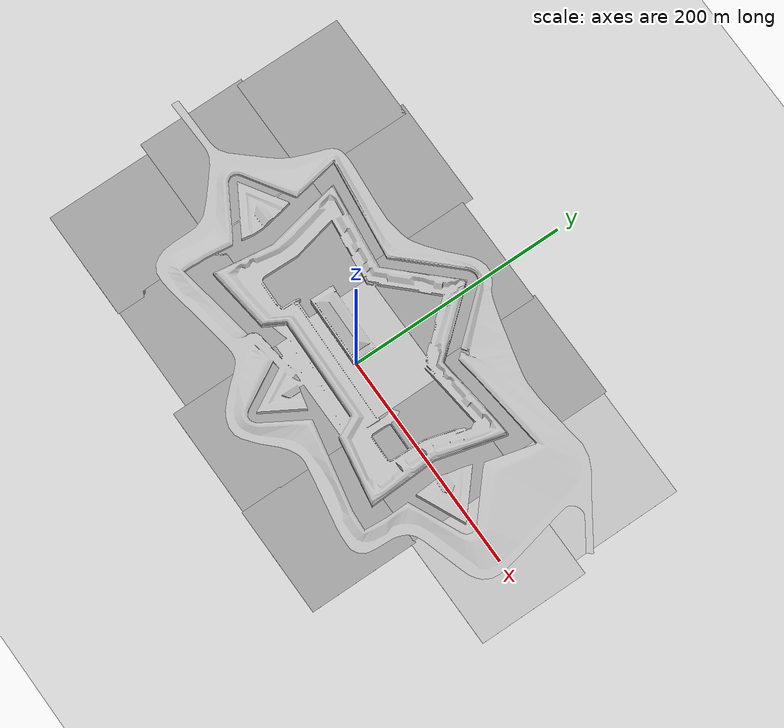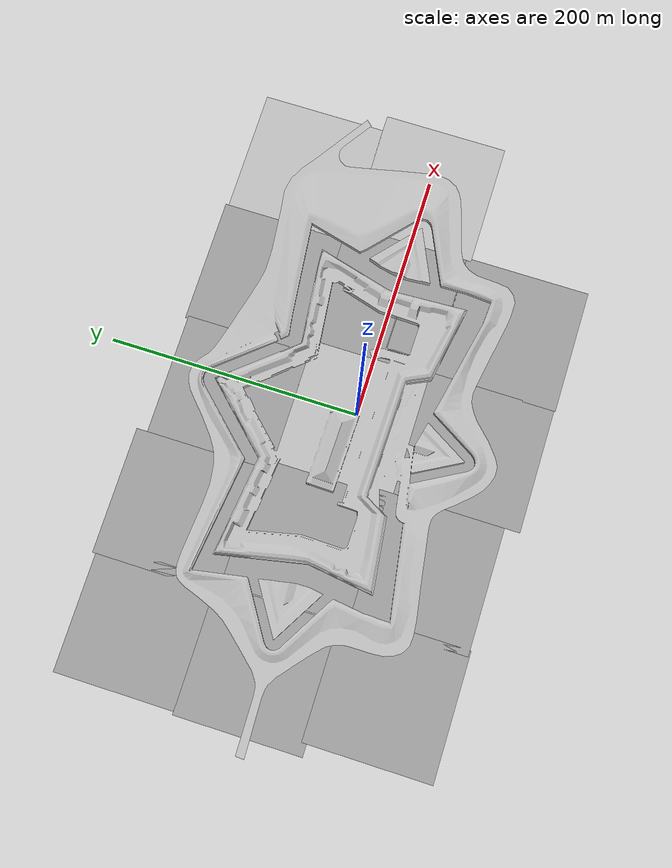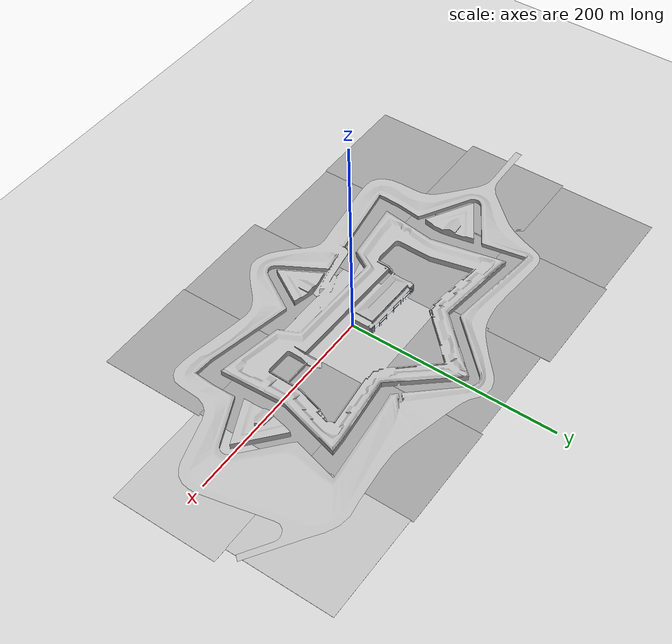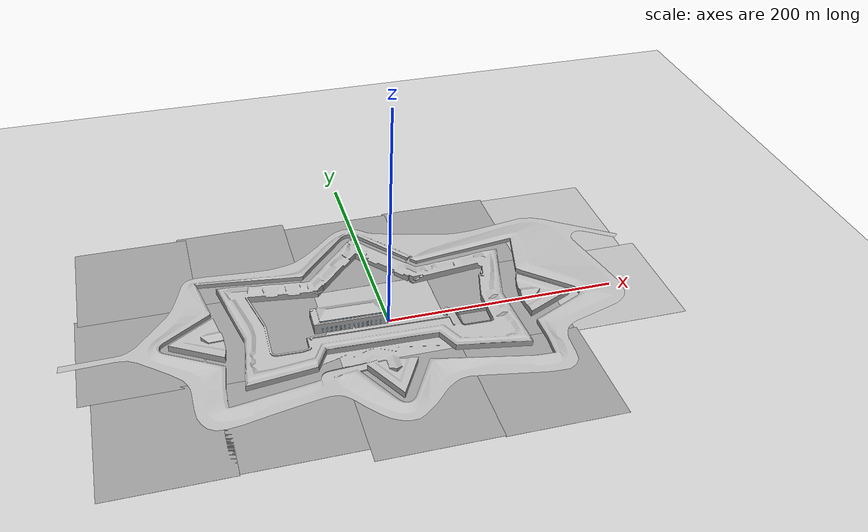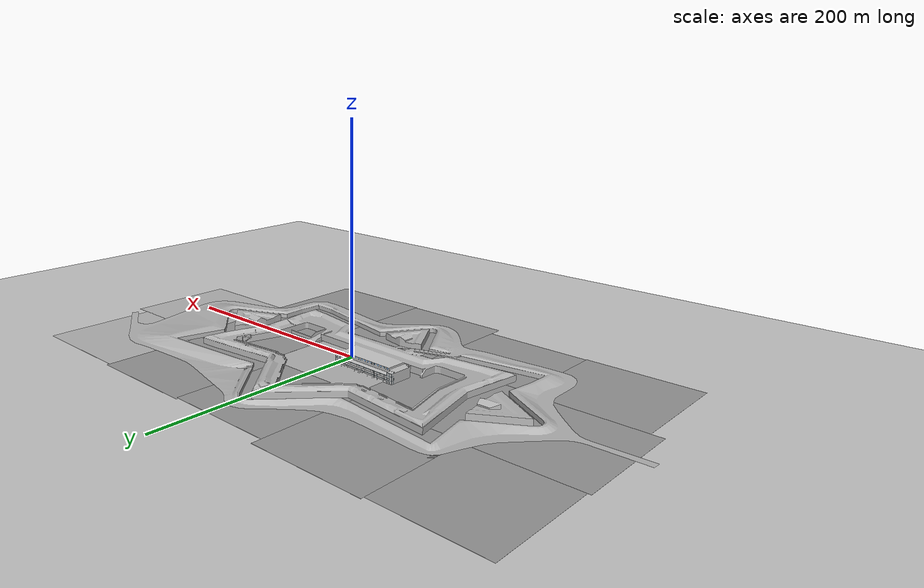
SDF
<sdf version="1.4">
 <world name="default">
  <light name="sundir" type="directional">
   <pose>0 0 10 0 -0 0</pose>
   <diffuse>1 0.95 0.8 1</diffuse>
   <specular>0.7 0.7 0.7 1</specular>
   <attenuation>
    <range>1000</range>
    <constant>0.9</constant>
    <linear>0.01</linear>
    <quadratic>0.001</quadratic>
   </attenuation>
   <direction>-0.3 0.4 -1</direction>
  </light>
  <light name="skydir1" type="directional">
   <cast_shadows>0</cast_shadows>
   <pose>10 0 10 0 -0 0</pose>
   <diffuse>0.5 0.5 0.52 1</diffuse>
   <specular>0.1 0.1 0.1 1</specular>
   <attenuation>
    <range>1000</range>
    <constant>0.9</constant>
    <linear>0.01</linear>
    <quadratic>0.001</quadratic>
   </attenuation>
   <direction>0.6 -0.4 -0.9</direction>
  </light>
  <light name="skydir2" type="directional">
   <cast_shadows>0</cast_shadows>
   <pose>20 0 10 0 -0 0</pose>
   <diffuse>0.5 0.5 0.52 1</diffuse>
   <specular>0.1 0.1 0.1 1</specular>
   <attenuation>
    <range>1000</range>
    <constant>0.9</constant>
    <linear>0.01</linear>
    <quadratic>0.001</quadratic>
   </attenuation>
   <direction>0 0.6 -0.9</direction>
  </light>
  <light name="refdir" type="directional">
   <cast_shadows>0</cast_shadows>
   <pose>30 0 10 0 -0 0</pose>
   <diffuse>0.52 0.5 0.5 1</diffuse>
   <specular>0.1 0.1 0.1 1</specular>
   <attenuation>
    <range>1000</range>
    <constant>0.9</constant>
    <linear>0.01</linear>
    <quadratic>0.001</quadratic>
   </attenuation>
   <direction>-0.6 -0.5 0.8</direction>
  </light>
  <model name="citadel">
   <pose>-291.751 -197.985 0 1.5708 -0 0</pose>
   <static>1</static>
   <link name="body">
    <collision name="collision">
     <geometry>
      <mesh>
       <uri>file:///home/rohan/work_workspace/src/Simulator/spiri_description/world/GazeboCitadel/Gazebo/citadel_tex1.dae</uri>
      </mesh>
     </geometry>
    </collision>
    <visual name="visual">
     <geometry>
      <mesh>
       <uri>file:///home/rohan/work_workspace/src/Simulator/spiri_description/world/GazeboCitadel/Gazebo/citadel_tex1.dae</uri>
      </mesh>
     </geometry>
    </visual>
    <velocity_decay><linear>0</linear><angular>0</angular></velocity_decay>
    <gravity>0</gravity>
   </link>
  </model>
  <scene><ambient>0.45 0.5 0.45 1</ambient><background>0 0.7 1 1</background><shadows>1</shadows></scene>
  <physics type="ode">
   <max_step_size>0.001</max_step_size>
   <real_time_factor>1</real_time_factor>
   <real_time_update_rate>1000</real_time_update_rate>
   <gravity>0 0 -9.8</gravity>
  </physics>
  <model name="ground_plane">
   <static>1</static>
   <link name="link">
    <collision name="collision">
     <geometry><plane><normal>0 0 1</normal><size>100 100</size></plane></geometry>
     <surface><friction><ode><mu>100</mu><mu2>50</mu2></ode></friction></surface>
    </collision>
    <visual name="visual">
     <cast_shadows>0</cast_shadows>
     <geometry><plane><normal>0 0 1</normal><size>100 100</size></plane></geometry>
     <material>
      <script><uri>file://media/materials/scripts/gazebo.material</uri><name>Gazebo/Grey</name></script>
     </material>
    </visual>
    <velocity_decay><linear>0</linear><angular>0</angular></velocity_decay>
   </link>
   <pose>-3 5 0 0 -0 0</pose>
  </model>
  <model name="ground_plane_0">
   <static>1</static>
   <link name="link">
    <collision name="collision">
     <geometry><plane><normal>0 0 1</normal><size>100 100</size></plane></geometry>
     <surface><friction><ode><mu>100</mu><mu2>50</mu2></ode></friction></surface>
    </collision>
    <visual name="visual">
     <cast_shadows>0</cast_shadows>
     <geometry><plane><normal>0 0 1</normal><size>100 100</size></plane></geometry>
     <material>
      <script>
       <uri>file:///home/rohan/work_workspace/src/Simulator/spiri_description/Media/materials/scripts/citadel_floor.material</uri>
       <name>Gazebo/Grey</name>
      </script>
     </material>
    </visual>
    <velocity_decay><linear>0</linear><angular>0</angular></velocity_decay>
   </link>
   <pose>97 3 0 0 -0 0</pose>
  </model>
  <model name="ground_plane_1">
   <static>1</static>
   <link name="link">
    <collision name="collision">
     <geometry><plane><normal>0 0 1</normal><size>100 100</size></plane></geometry>
     <surface><friction><ode><mu>100</mu><mu2>50</mu2></ode></friction></surface>
    </collision>
    <visual name="visual">
     <cast_shadows>0</cast_shadows>
     <geometry><plane><normal>0 0 1</normal><size>100 100</size></plane></geometry>
     <material>
      <script><uri>file://media/materials/scripts/gazebo.material</uri><name>Gazebo/Grey</name></script>
     </material>
    </visual>
    <velocity_decay><linear>0</linear><angular>0</angular></velocity_decay>
   </link>
   <pose>0 -95 0 0 -0 0</pose>
  </model>
  <model name="ground_plane_2">
   <static>1</static>
   <link name="link">
    <collision name="collision">
     <geometry><plane><normal>0 0 1</normal><size>100 100</size></plane></geometry>
     <surface><friction><ode><mu>100</mu><mu2>50</mu2></ode></friction></surface>
    </collision>
    <visual name="visual">
     <cast_shadows>0</cast_shadows>
     <geometry><plane><normal>0 0 1</normal><size>100 100</size></plane></geometry>
     <material>
      <script><uri>file://media/materials/scripts/gazebo.material</uri><name>Gazebo/Grey</name></script>
     </material>
    </visual>
    <velocity_decay><linear>0</linear><angular>0</angular></velocity_decay>
   </link>
   <pose>99 -96 0 0 -0 0</pose>
  </model>
  <model name="ground_plane_3">
   <static>1</static>
   <link name="link">
    <collision name="collision">
     <geometry><plane><normal>0 0 1</normal><size>100 100</size></plane></geometry>
     <surface><friction><ode><mu>100</mu><mu2>50</mu2></ode></friction></surface>
    </collision>
    <visual name="visual">
     <cast_shadows>0</cast_shadows>
     <geometry><plane><normal>0 0 1</normal><size>100 100</size></plane></geometry>
     <material>
      <script><uri>file://media/materials/scripts/gazebo.material</uri><name>Gazebo/Grey</name></script>
     </material>
    </visual>
    <velocity_decay><linear>0</linear><angular>0</angular></velocity_decay>
   </link>
   <pose>-104 9 0 0 -0 0</pose>
  </model>
  <model name="ground_plane_4">
   <static>1</static>
   <link name="link">
    <collision name="collision">
     <geometry><plane><normal>0 0 1</normal><size>100 100</size></plane></geometry>
     <surface><friction><ode><mu>100</mu><mu2>50</mu2></ode></friction></surface>
    </collision>
    <visual name="visual">
     <cast_shadows>0</cast_shadows>
     <geometry><plane><normal>0 0 1</normal><size>100 100</size></plane></geometry>
     <material>
      <script><uri>file://media/materials/scripts/gazebo.material</uri><name>Gazebo/Grey</name></script>
     </material>
    </visual>
    <velocity_decay><linear>0</linear><angular>0</angular></velocity_decay>
   </link>
   <pose>-100 -83 0 0 -0 0</pose>
  </model>
  <model name="ground_plane_5">
   <static>1</static>
   <link name="link">
    <collision name="collision">
     <geometry><plane><normal>0 0 1</normal><size>100 100</size></plane></geometry>
     <surface><friction><ode><mu>100</mu><mu2>50</mu2></ode></friction></surface>
    </collision>
    <visual name="visual">
     <cast_shadows>0</cast_shadows>
     <geometry><plane><normal>0 0 1</normal><size>100 100</size></plane></geometry>
     <material>
      <script><uri>file://media/materials/scripts/gazebo.material</uri><name>Gazebo/Grey</name></script>
     </material>
    </visual>
    <velocity_decay><linear>0</linear><angular>0</angular></velocity_decay>
   </link>
   <pose>-205 12 0 0 -0 0</pose>
  </model>
  <model name="ground_plane_6">
   <static>1</static>
   <link name="link">
    <collision name="collision">
     <geometry><plane><normal>0 0 1</normal><size>100 100</size></plane></geometry>
     <surface><friction><ode><mu>100</mu><mu2>50</mu2></ode></friction></surface>
    </collision>
    <visual name="visual">
     <cast_shadows>0</cast_shadows>
     <geometry><plane><normal>0 0 1</normal><size>100 100</size></plane></geometry>
     <material>
      <script><uri>file://media/materials/scripts/gazebo.material</uri><name>Gazebo/Grey</name></script>
     </material>
    </visual>
    <velocity_decay><linear>0</linear><angular>0</angular></velocity_decay>
   </link>
   <pose>-195 -84 0 0 -0 0</pose>
  </model>
  <model name="ground_plane_7">
   <static>1</static>
   <link name="link">
    <collision name="collision">
     <geometry><plane><normal>0 0 1</normal><size>100 100</size></plane></geometry>
     <surface><friction><ode><mu>100</mu><mu2>50</mu2></ode></friction></surface>
    </collision>
    <visual name="visual">
     <cast_shadows>0</cast_shadows>
     <geometry><plane><normal>0 0 1</normal><size>100 100</size></plane></geometry>
     <material>
      <script><uri>file://media/materials/scripts/gazebo.material</uri><name>Gazebo/Grey</name></script>
     </material>
    </visual>
    <velocity_decay><linear>0</linear><angular>0</angular></velocity_decay>
   </link>
   <pose>-111 108.575 0 0 -0 0</pose>
  </model>
  <model name="ground_plane_8">
   <static>1</static>
   <link name="link">
    <collision name="collision">
     <geometry><plane><normal>0 0 1</normal><size>100 100</size></plane></geometry>
     <surface><friction><ode><mu>100</mu><mu2>50</mu2></ode></friction></surface>
    </collision>
    <visual name="visual">
     <cast_shadows>0</cast_shadows>
     <geometry><plane><normal>0 0 1</normal><size>100 100</size></plane></geometry>
     <material>
      <script><uri>file://media/materials/scripts/gazebo.material</uri><name>Gazebo/Grey</name></script>
     </material>
    </visual>
    <velocity_decay><linear>0</linear><angular>0</angular></velocity_decay>
   </link>
   <pose>-13.4519 100 0 0 -0 0</pose>
  </model>
  <model name="ground_plane_9">
   <static>1</static>
   <link name="link">
    <collision name="collision">
     <geometry><plane><normal>0 0 1</normal><size>100 100</size></plane></geometry>
     <surface><friction><ode><mu>100</mu><mu2>50</mu2></ode></friction></surface>
    </collision>
    <visual name="visual">
     <cast_shadows>0</cast_shadows>
     <geometry><plane><normal>0 0 1</normal><size>100 100</size></plane></geometry>
     <material>
      <script><uri>file://media/materials/scripts/gazebo.material</uri><name>Gazebo/Grey</name></script>
     </material>
    </visual>
    <velocity_decay><linear>0</linear><angular>0</angular></velocity_decay>
   </link>
   <pose>84.499 102 0 0 -0 0</pose>
  </model>
  <model name="ground_plane_10">
   <static>1</static>
   <link name="link">
    <collision name="collision">
     <geometry><plane><normal>0 0 1</normal><size>100 100</size></plane></geometry>
     <surface><friction><ode><mu>100</mu><mu2>50</mu2></ode></friction></surface>
    </collision>
    <visual name="visual">
     <cast_shadows>0</cast_shadows>
     <geometry><plane><normal>0 0 1</normal><size>100 100</size></plane></geometry>
     <material>
      <script><uri>file://media/materials/scripts/gazebo.material</uri><name>Gazebo/Grey</name></script>
     </material>
    </visual>
    <velocity_decay><linear>0</linear><angular>0</angular></velocity_decay>
   </link>
   <pose>-202.505 106 0 0 -0 0</pose>
  </model>
  <model name="ground_plane_11">
   <static>1</static>
   <link name="link">
    <collision name="collision">
     <geometry><plane><normal>0 0 1</normal><size>100 100</size></plane></geometry>
     <surface><friction><ode><mu>100</mu><mu2>50</mu2></ode></friction></surface>
    </collision>
    <visual name="visual">
     <cast_shadows>0</cast_shadows>
     <geometry><plane><normal>0 0 1</normal><size>100 100</size></plane></geometry>
     <material>
      <script>
       <uri>file:///home/rohan/work_workspace/src/Simulator/spiri_description/Media/materials/scripts/citadel_floor.material</uri>
       <name>spiri_description/citadel_floor</name>
      </script>
     </material>
    </visual>
    <velocity_decay><linear>0</linear><angular>0</angular></velocity_decay>
   </link>
   <pose>184 99.546 0 0 -0 0</pose>
  </model>
  <model name="ground_plane_12">
   <static>1</static>
   <link name="link">
    <collision name="collision">
     <geometry><plane><normal>0 0 1</normal><size>100 100</size></plane></geometry>
     <surface><friction><ode><mu>100</mu><mu2>50</mu2></ode></friction></surface>
    </collision>
    <visual name="visual">
     <cast_shadows>0</cast_shadows>
     <geometry><plane><normal>0 0 1</normal><size>100 100</size></plane></geometry>
     <material>
      <script>
       <uri>file:///home/rohan/work_workspace/src/Simulator/spiri_description/Media/materials/scripts/citadel_floor.material</uri>
       <name>spiri_description/citadel_floor</name>
      </script>
     </material>
    </visual>
    <velocity_decay><linear>0</linear><angular>0</angular></velocity_decay>
   </link>
   <pose>197 0 0 0 -0 0</pose>
  </model>
 </world>
</sdf>
